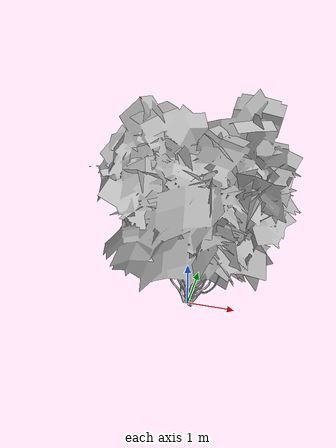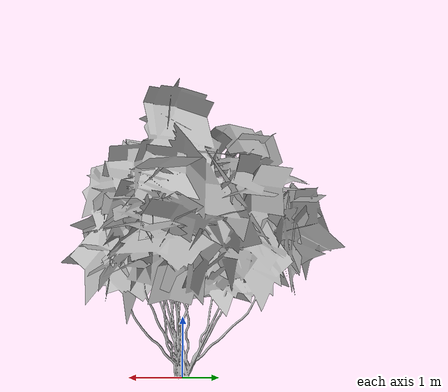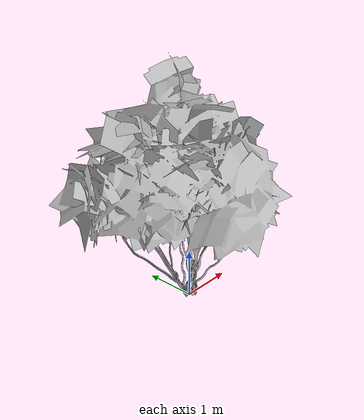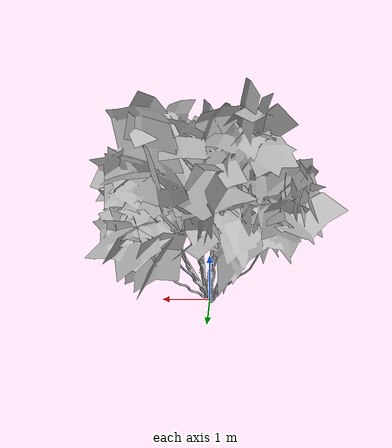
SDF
<?xml version="1.0" ?>
<sdf version="1.5">
  <model name="Bush 1">
     <static>true</static>
    <pose frame=''>0 0 0 1.57079 0 0</pose>
    <link name="link">
      <pose frame=''>0 0 0 0 0 0</pose>
      <collision name="collision">
        <geometry>
          <mesh>
            <scale>5 5 5</scale>
            <uri>model://bush_1/meshes/bush_1.obj</uri>
          </mesh>
        </geometry>
      </collision>
      <visual name="visual">
        <geometry>
          <mesh>

            <scale>5 5 5</scale>
            <uri>model://bush_1/meshes/bush_1.obj</uri>
          </mesh>
        </geometry>
      </visual>
    </link>
  </model>
</sdf>
